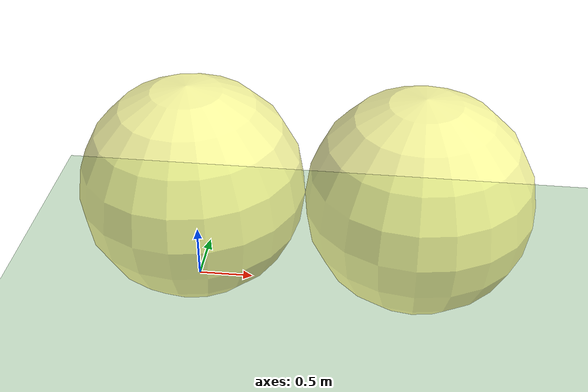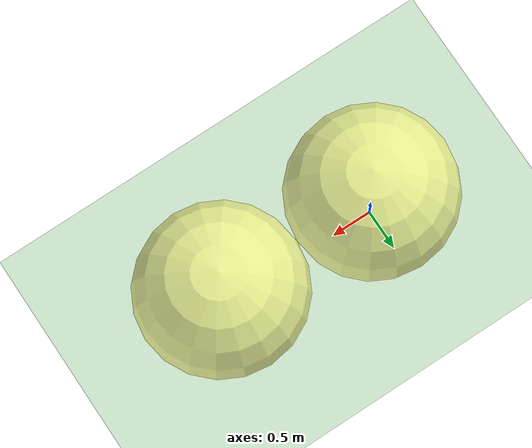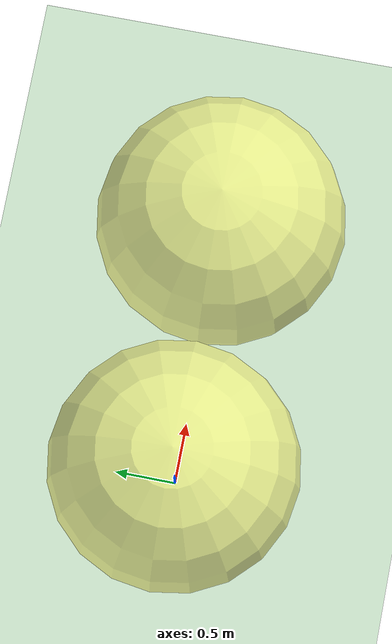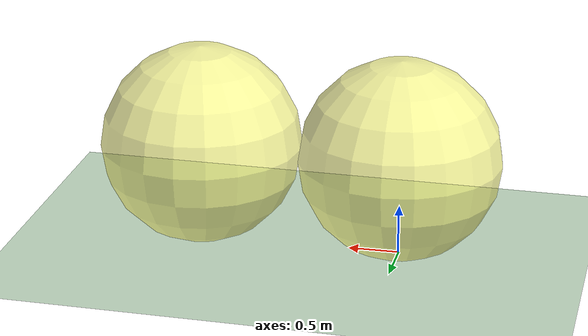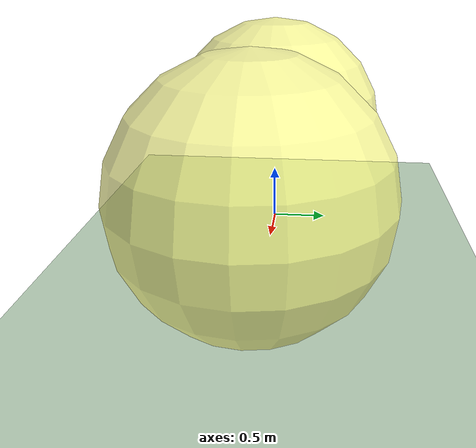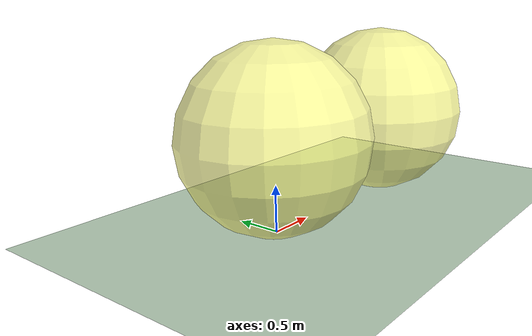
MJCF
<?xml version="1.0" ?>
<mujoco>
  <!-- Just infer inertia from geometry since we're not going to be rotating the mass -->
  <compiler angle="radian" coordinate="local" inertiafromgeom="true" />
  <option integrator="RK4" timestep="0.02" />

  <default>
    <joint armature="0" damping="0" limited="false" />
    <!-- Default geom is collisionless -->
    <geom conaffinity="2" condim="3" density="100" friction="1 0.5 0.5" margin="0" rgba="1 1 0.5 0.7" material="mat-geom-default"/>
  </default>

  <asset>
    <texture type="skybox" builtin="gradient" height="100" width="100" rgb1="1 1 1" rgb2="0 0 0" />
    <texture name="tex-geom" type="cube" builtin="flat" height="1278" width="127" mark="cross" markrgb="0.3 0.3 0.3" random="0.01" rgb1="0.8 0.6 0.4" rgb2="0.8 0.6 0.4" />
    <texture name="tex-target" type="cube" builtin="flat" height="1278" width="127" mark="cross" markrgb="0.3 0.3 0.3" random="0.01" rgb1="0.2 1.0 0.2" rgb2="0.2 1.0 0.2" />
    <texture name="tex-floor" type="2d" builtin="checker" height="100" width="100" rgb1="0 0 0" rgb2="0.8 0.8 0.8" />
    <material name="mat-floor" reflectance="0.5" shininess="1" specular="1" texrepeat="30 30" texture="tex-floor" />
    <material name="mat-geom-default" texture="tex-geom" texuniform="true" />
    <material name="mat-target" texture="tex-target" texuniform="true" />
  </asset>

  <worldbody>
    <light cutoff="100" diffuse="1 1 1" dir="-0 0 -1.3" directional="true" exponent="1" pos="0 0 1.3" specular=".1 .1 .1" />
    <geom name="floor" type="plane" conaffinity="1" condim="3" pos="0 0 0" rgba="0.8 0.9 0.8 1" size="40 40 40" material="mat-floor" />
    <!-- Point mass with spherical collision geometry -->
    <body name="ball" pos="0 0 0">
      <geom name="ball-geom" type="sphere" conaffinity="2" size="1" pos="0 0 1" />
      <joint name="joint-ballx" type="slide" axis="1 0 0" pos="0 0 0" />
      <joint name="joint-bally" type="slide" axis="0 1 0" pos="0 0 0" />
    </body>
    <!-- Collisionless target limited to x-y plane -->
    <body name="target" pos="2 0 0">
      <geom name="target-geom" type="sphere" conaffinity="0" size="1" pos="0 0 1" material="mat-target" />
      <joint name="joint-targetx" type="slide" axis="1 0 0" pos="0 0 0" />
      <joint name="joint-targety" type="slide" axis="0 1 0" pos="0 0 0" />
    </body>
  </worldbody>

  <actuator>
    <!-- All actuators should have a control range as a force limiter -->
    <motor name="actuator-x" gear="500" joint="joint-ballx" />
    <motor name="actuator-y" gear="500" joint="joint-bally" />
  </actuator>

  <sensor>
  </sensor>

</mujoco>
